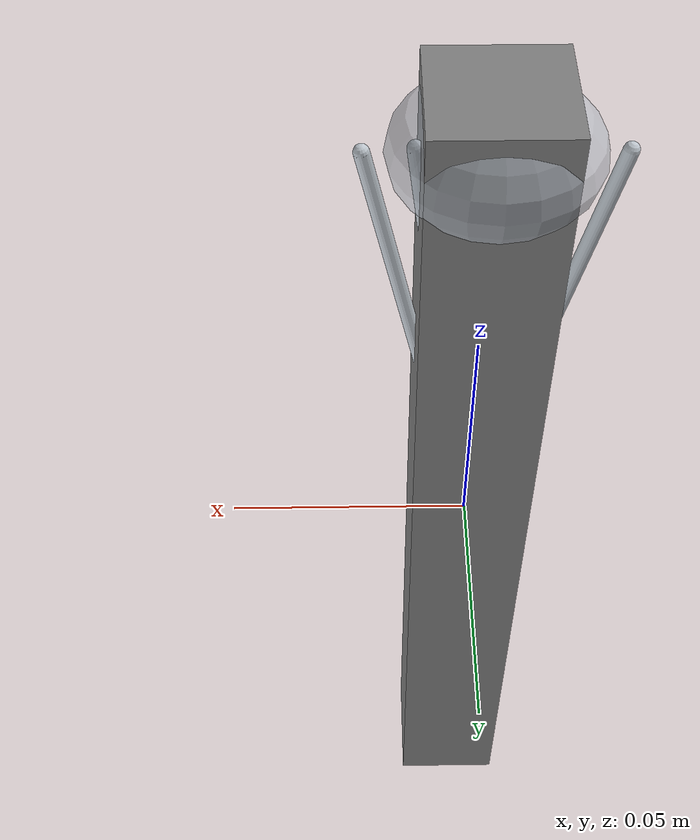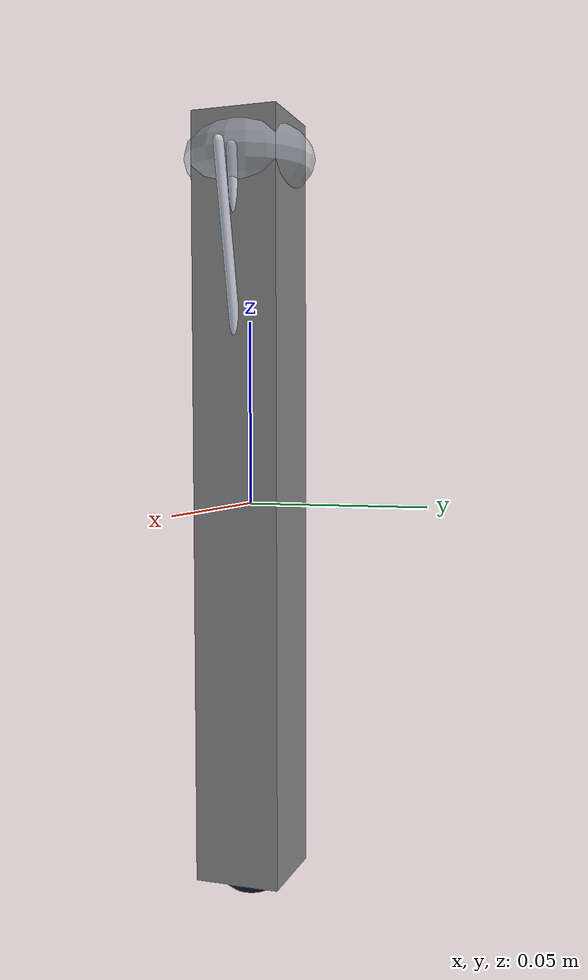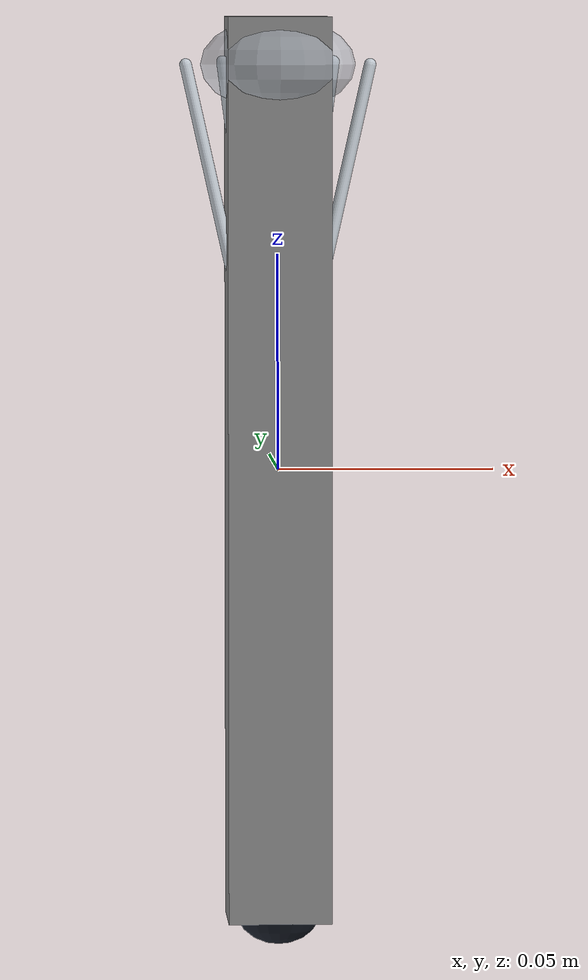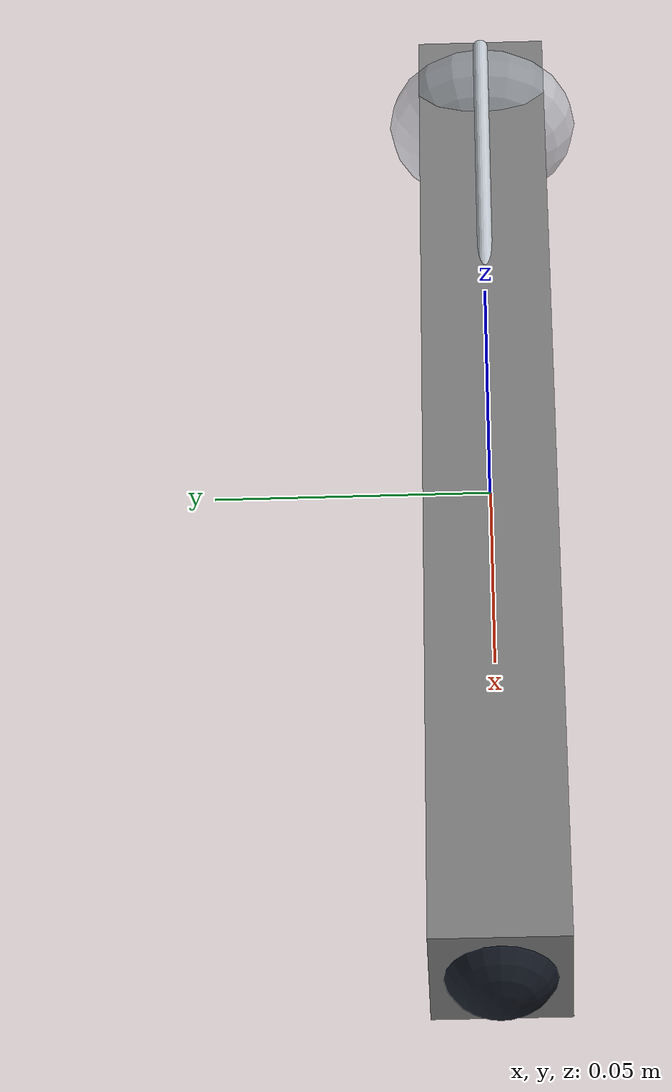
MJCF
<mujoco model="vla82_vla82_005">
  <compiler angle="radian"/>
  <asset>
    <texture name="source_texture" type="2d" file="source_texture.png"/>
    <material name="source_material" texture="source_texture" rgba="1 1 1 1"/>
  </asset>
  <default>
    <default class="visual"><geom contype="0" conaffinity="0" group="1" mass="0"/></default>
    <default class="collision"><geom contype="1" conaffinity="1" group="0" density="300" friction="0.45 0.004 0.0001" solref="0.02 1" solimp="0.9 0.95 0.001"/></default>
    <default class="region"><geom contype="0" conaffinity="0" group="1" rgba="0 1 0 0" mass="0"/></default>
  </default>
  <worldbody><body><body name="object">
    <geom name="whisk_handle" class="visual" type="cylinder" pos="0 0 -0.052" size="0.010 0.050" rgba="0.10 0.13 0.18 1"/>
    <geom name="whisk_handle_cap" class="visual" type="ellipsoid" pos="0 0 -0.103" size="0.010 0.010 0.008" rgba="0.08 0.10 0.14 1"/>
    <geom name="whisk_metal_neck" class="visual" type="cylinder" pos="0 0 0.001" size="0.005 0.018" rgba="0.72 0.75 0.79 1"/>
    <geom name="whisk_wire_0" class="visual" type="capsule" pos="-0.0120 0 0.052" size="0.0014 0.043" euler="0 -0.2200 0" rgba="0.76 0.79 0.82 1"/>
    <geom name="whisk_wire_1" class="visual" type="capsule" pos="-0.0072 0 0.052" size="0.0014 0.043" euler="0 -0.1320 0" rgba="0.76 0.79 0.82 1"/>
    <geom name="whisk_wire_2" class="visual" type="capsule" pos="-0.0024 0 0.052" size="0.0014 0.043" euler="0 -0.0440 0" rgba="0.76 0.79 0.82 1"/>
    <geom name="whisk_wire_3" class="visual" type="capsule" pos="0.0024 0 0.052" size="0.0014 0.043" euler="0 0.0440 0" rgba="0.76 0.79 0.82 1"/>
    <geom name="whisk_wire_4" class="visual" type="capsule" pos="0.0072 0 0.052" size="0.0014 0.043" euler="0 0.1320 0" rgba="0.76 0.79 0.82 1"/>
    <geom name="whisk_wire_5" class="visual" type="capsule" pos="0.0120 0 0.052" size="0.0014 0.043" euler="0 0.2200 0" rgba="0.76 0.79 0.82 1"/>
    <geom name="whisk_wire_crown" class="visual" type="ellipsoid" pos="0 0 0.094" size="0.018 0.018 0.011" rgba="0.70 0.73 0.77 0.55"/>
    <geom name="legacy_visual_mass_carrier" class="visual" type="box" size="0.012000 0.012000 0.105000" mass="0.120960000" rgba="0 0 0 0"/>
    <geom name="collision" class="collision" type="box" size="0.012000 0.012000 0.105000"/>
    <geom name="reg_bbox" class="region" type="box" pos="0 0 0" size="0.012000 0.012000 0.105000"/>
  </body></body></worldbody>
  <actuator/>
</mujoco>
